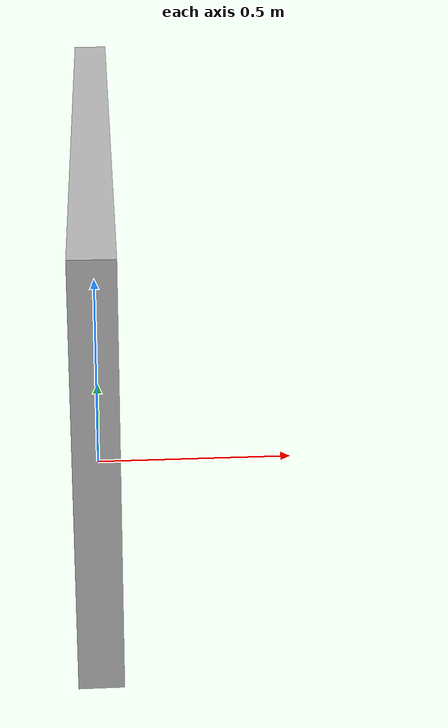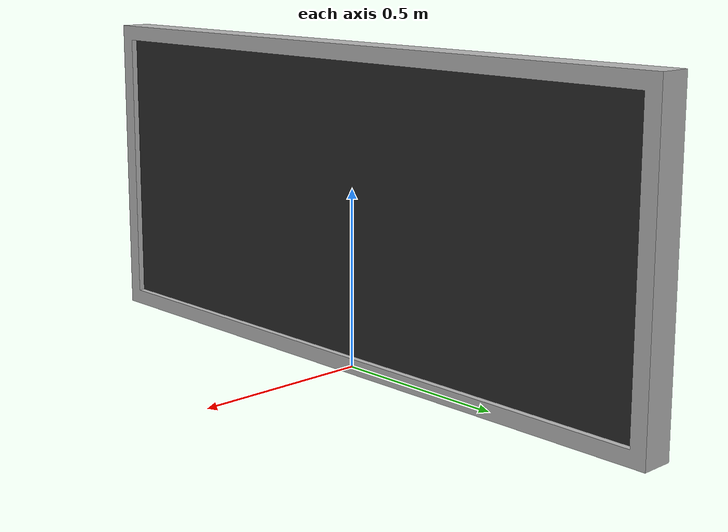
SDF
<?xml version='1.0' ?>
<sdf version='1.6'>
  <model name='Tablon'>
    <static>true</static>
    <link name='link'>
      <collision name='collision'>
        <geometry>
          <mesh>
            <uri>model://tablon/meshes/collision/collision.stl</uri>
          </mesh>
        </geometry>
      </collision>
      <visual name='visual'>
        <geometry>
          <mesh>
            <uri>model://tablon/meshes/visual/visual.dae</uri>
          </mesh>
        </geometry>
      </visual>
    </link>
  </model>
</sdf>
